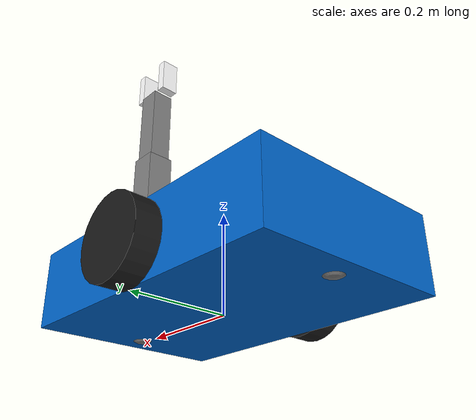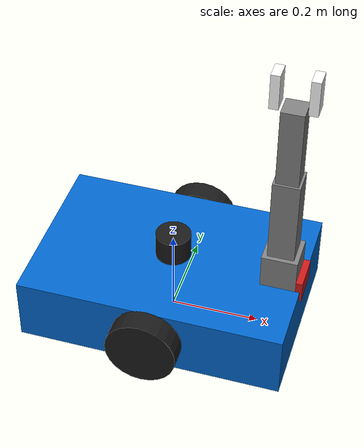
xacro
<?xml version="1.0"?>
<robot name="colour_sorting_robot" xmlns:xacro="http://www.ros.org/wiki/xacro">

  <!-- ===== PROPERTIES ===== -->
  <xacro:property name="base_length" value="0.6"/>
  <xacro:property name="base_width"  value="0.4"/>
  <xacro:property name="base_height" value="0.15"/>
  <xacro:property name="wheel_radius" value="0.08"/>
  <xacro:property name="wheel_width"  value="0.05"/>

  <!-- ===== MATERIALS ===== -->
  <material name="grey"> <color rgba="0.5 0.5 0.5 1"/></material>
  <material name="black"><color rgba="0.1 0.1 0.1 1"/></material>
  <material name="blue"> <color rgba="0.0 0.4 0.8 1"/></material>
  <material name="red">  <color rgba="0.8 0.1 0.1 1"/></material>
  <material name="white"><color rgba="1.0 1.0 1.0 1"/></material>

  <!-- ===== BASE FOOTPRINT ===== -->
  <link name="base_footprint"/>

  <joint name="base_footprint_joint" type="fixed">
    <parent link="base_footprint"/>
    <child  link="base_link"/>
    <origin xyz="0 0 ${wheel_radius}" rpy="0 0 0"/>
  </joint>

  <!-- ===== BASE LINK ===== -->
  <link name="base_link">
    <visual>
      <geometry><box size="${base_length} ${base_width} ${base_height}"/></geometry>
      <material name="blue"/>
    </visual>
    <collision>
      <geometry><box size="${base_length} ${base_width} ${base_height}"/></geometry>
    </collision>
    <inertial>
      <origin xyz="0 0 0" rpy="0 0 0"/>
      <mass value="15.0"/>
      <inertia ixx="0.4" ixy="0" ixz="0"
                         iyy="0.4" iyz="0"
                                   izz="0.4"/>
    </inertial>
  </link>

  <!-- ===== WHEEL MACRO ===== -->
  <xacro:macro name="wheel" params="name x y">
    <link name="${name}_wheel_link">
      <visual>
        <geometry><cylinder radius="${wheel_radius}" length="${wheel_width}"/></geometry>
        <material name="black"/>
      </visual>
      <collision>
        <geometry><cylinder radius="${wheel_radius}" length="${wheel_width}"/></geometry>
      </collision>
      <inertial>
        <origin xyz="0 0 0" rpy="0 0 0"/>
        <mass value="1.0"/>
        <inertia ixx="0.002" ixy="0" ixz="0"
                             iyy="0.002" iyz="0"
                                         izz="0.004"/>
      </inertial>
    </link>

    <joint name="${name}_wheel_joint" type="continuous">
      <parent link="base_link"/>
      <child  link="${name}_wheel_link"/>
      <origin xyz="${x} ${y} 0" rpy="-1.5707963 0 0"/>
      <axis xyz="0 0 1"/>
      <dynamics damping="0.1" friction="0.1"/>
    </joint>

    <gazebo reference="${name}_wheel_link">
      <mu1>10.0</mu1>
      <mu2>10.0</mu2>
      <kp>500000.0</kp>
      <kd>10.0</kd>
      <minDepth>0.001</minDepth>
      <maxVel>0.1</maxVel>
      <material>Gazebo/Black</material>
    </gazebo>
  </xacro:macro>

  <xacro:wheel name="left"  x="0.0" y=" 0.225"/>
  <xacro:wheel name="right" x="0.0" y="-0.225"/>

  <!-- ===== CASTER FRONT ===== -->
  <link name="caster_front_link">
    <visual>
      <geometry><sphere radius="0.04"/></geometry>
      <material name="grey"/>
    </visual>
    <collision>
      <geometry><sphere radius="0.04"/></geometry>
    </collision>
    <inertial>
      <mass value="0.5"/>
      <inertia ixx="0.001" ixy="0" ixz="0"
                           iyy="0.001" iyz="0"
                                       izz="0.001"/>
    </inertial>
  </link>
  <joint name="caster_front_joint" type="fixed">
    <parent link="base_link"/>
    <child  link="caster_front_link"/>
    <origin xyz=" 0.25 0.0 -0.04" rpy="0 0 0"/>
  </joint>
  <gazebo reference="caster_front_link">
    <mu1>0.0</mu1>
    <mu2>0.0</mu2>
  </gazebo>

  <!-- ===== CASTER REAR ===== -->
  <link name="caster_rear_link">
    <visual>
      <geometry><sphere radius="0.04"/></geometry>
      <material name="grey"/>
    </visual>
    <collision>
      <geometry><sphere radius="0.04"/></geometry>
    </collision>
    <inertial>
      <mass value="0.5"/>
      <inertia ixx="0.001" ixy="0" ixz="0"
                           iyy="0.001" iyz="0"
                                       izz="0.001"/>
    </inertial>
  </link>
  <joint name="caster_rear_joint" type="fixed">
    <parent link="base_link"/>
    <child  link="caster_rear_link"/>
    <origin xyz="-0.25 0.0 -0.04" rpy="0 0 0"/>
  </joint>
  <gazebo reference="caster_rear_link">
    <mu1>0.0</mu1>
    <mu2>0.0</mu2>
  </gazebo>

  <!-- ===== LIDAR ===== -->
  <link name="lidar_link">
    <visual>
      <geometry><cylinder radius="0.04" length="0.06"/></geometry>
      <material name="black"/>
    </visual>
    <collision>
      <geometry><cylinder radius="0.04" length="0.06"/></geometry>
    </collision>
    <inertial>
      <mass value="0.2"/>
      <inertia ixx="0.001" ixy="0" ixz="0"
                           iyy="0.001" iyz="0"
                                       izz="0.001"/>
    </inertial>
  </link>
  <joint name="lidar_joint" type="fixed">
    <parent link="base_link"/>
    <child  link="lidar_link"/>
    <origin xyz="0.0 0.0 ${base_height/2 + 0.03}" rpy="0 0 0"/>
  </joint>

  <!-- ===== CAMERA ===== -->
  <link name="camera_link">
    <visual>
      <geometry><box size="0.05 0.08 0.05"/></geometry>
      <material name="red"/>
    </visual>
    <collision>
      <geometry><box size="0.05 0.08 0.05"/></geometry>
    </collision>
    <inertial>
      <mass value="0.1"/>
      <inertia ixx="0.001" ixy="0" ixz="0"
                           iyy="0.001" iyz="0"
                                       izz="0.001"/>
    </inertial>
  </link>
  <joint name="camera_joint" type="fixed">
    <parent link="base_link"/>
    <child  link="camera_link"/>
    <origin xyz="${base_length/2 - 0.02} 0.0 ${base_height/2}" rpy="0 0 0"/>
  </joint>

  <link name="camera_optical_link"/>
  <joint name="camera_optical_joint" type="fixed">
    <parent link="camera_link"/>
    <child  link="camera_optical_link"/>
    <origin xyz="0 0 0" rpy="-1.5707 0 -1.5707"/>
  </joint>

  <!-- ===== ARM BASE ===== -->
  <link name="arm_base_link">
    <visual>
      <geometry><box size="0.08 0.08 0.08"/></geometry>
      <material name="grey"/>
    </visual>
    <collision>
      <geometry><box size="0.08 0.08 0.08"/></geometry>
    </collision>
    <inertial>
      <mass value="0.5"/>
      <inertia ixx="0.01" ixy="0" ixz="0"
                          iyy="0.01" iyz="0"
                                     izz="0.01"/>
    </inertial>
  </link>
  <joint name="arm_base_joint" type="fixed">
    <parent link="base_link"/>
    <child  link="arm_base_link"/>
    <origin xyz="${base_length/2 - 0.05} 0.0 ${base_height/2 + 0.04}" rpy="0 0 0"/>
  </joint>

  <!-- ===== ARM LINK 1 ===== -->
  <link name="arm_link1">
    <visual>
      <geometry><box size="0.06 0.06 0.20"/></geometry>
      <material name="grey"/>
    </visual>
    <collision>
      <geometry><box size="0.06 0.06 0.20"/></geometry>
    </collision>
    <inertial>
      <mass value="0.4"/>
      <inertia ixx="0.01" ixy="0" ixz="0"
                          iyy="0.01" iyz="0"
                                     izz="0.01"/>
    </inertial>
  </link>
  <joint name="arm_joint1" type="revolute">
    <parent link="arm_base_link"/>
    <child  link="arm_link1"/>
    <origin xyz="0 0 0.14" rpy="0 0 0"/>
    <axis xyz="0 1 0"/>
    <limit lower="-1.57" upper="1.57" effort="10" velocity="1.0"/>
    <dynamics damping="0.5"/>
  </joint>

  <!-- ===== ARM LINK 2 ===== -->
  <link name="arm_link2">
    <visual>
      <geometry><box size="0.05 0.05 0.18"/></geometry>
      <material name="grey"/>
    </visual>
    <collision>
      <geometry><box size="0.05 0.05 0.18"/></geometry>
    </collision>
    <inertial>
      <mass value="0.3"/>
      <inertia ixx="0.01" ixy="0" ixz="0"
                          iyy="0.01" iyz="0"
                                     izz="0.01"/>
    </inertial>
  </link>
  <joint name="arm_joint2" type="revolute">
    <parent link="arm_link1"/>
    <child  link="arm_link2"/>
    <origin xyz="0 0 0.19" rpy="0 0 0"/>
    <axis xyz="0 1 0"/>
    <limit lower="-1.57" upper="1.57" effort="10" velocity="1.0"/>
    <dynamics damping="0.5"/>
  </joint>

  <!-- ===== GRIPPER LEFT ===== -->
  <link name="gripper_left">
    <visual>
      <geometry><box size="0.02 0.04 0.08"/></geometry>
      <material name="white"/>
    </visual>
    <collision>
      <geometry><box size="0.02 0.04 0.08"/></geometry>
    </collision>
    <inertial>
      <mass value="0.1"/>
      <inertia ixx="0.001" ixy="0" ixz="0"
                           iyy="0.001" iyz="0"
                                       izz="0.001"/>
    </inertial>
  </link>
  <joint name="gripper_left_joint" type="prismatic">
    <parent link="arm_link2"/>
    <child  link="gripper_left"/>
    <origin xyz="0.04 0.0 0.13" rpy="0 0 0"/>
    <axis xyz="0 1 0"/>
    <limit lower="0.0" upper="0.06" effort="5" velocity="0.5"/>
  </joint>

  <!-- ===== GRIPPER RIGHT ===== -->
  <link name="gripper_right">
    <visual>
      <geometry><box size="0.02 0.04 0.08"/></geometry>
      <material name="white"/>
    </visual>
    <collision>
      <geometry><box size="0.02 0.04 0.08"/></geometry>
    </collision>
    <inertial>
      <mass value="0.1"/>
      <inertia ixx="0.001" ixy="0" ixz="0"
                           iyy="0.001" iyz="0"
                                       izz="0.001"/>
    </inertial>
  </link>
  <joint name="gripper_right_joint" type="prismatic">
    <parent link="arm_link2"/>
    <child  link="gripper_right"/>
    <origin xyz="-0.04 0.0 0.13" rpy="0 0 0"/>
    <axis xyz="0 1 0"/>
    <limit lower="-0.06" upper="0.0" effort="5" velocity="0.5"/>
  </joint>

  <!--         GAZEBO PLUGINS                           -->

  <!-- Differential Drive Plugin -->
  <gazebo>
    <plugin name="diff_drive" filename="libgazebo_ros_diff_drive.so">
      <updateRate>50</updateRate>
      <leftJoint>left_wheel_joint</leftJoint>
      <rightJoint>right_wheel_joint</rightJoint>
      <wheelSeparation>0.45</wheelSeparation>
      <wheelDiameter>0.16</wheelDiameter>
      <wheelAcceleration>1.0</wheelAcceleration>
      <wheelTorque>20</wheelTorque>
      <commandTopic>cmd_vel</commandTopic>
      <odometryTopic>odom</odometryTopic>
      <odometryFrame>odom</odometryFrame>
      <robotBaseFrame>base_footprint</robotBaseFrame>
      <publishOdomTF>true</publishOdomTF>
      <publishWheelTF>false</publishWheelTF>
      <publishTf>true</publishTf>
      <publishWheelJointState>true</publishWheelJointState>
      <legacyMode>false</legacyMode>
      <rosDebugLevel>na</rosDebugLevel>
    </plugin>
  </gazebo>

  <!-- LiDAR Plugin -->
  <gazebo reference="lidar_link">
    <sensor type="ray" name="lidar_sensor">
      <pose>0 0 0 0 0 0</pose>
      <visualize>true</visualize>
      <update_rate>10</update_rate>
      <ray>
        <scan>
          <horizontal>
            <samples>360</samples>
            <resolution>1</resolution>
            <min_angle>-3.14159</min_angle>
            <max_angle> 3.14159</max_angle>
          </horizontal>
        </scan>
        <range>
          <min>0.15</min>
          <max>10.0</max>
          <resolution>0.01</resolution>
        </range>
      </ray>
      <plugin name="lidar_plugin" filename="libgazebo_ros_laser.so">
        <topicName>/scan</topicName>
        <frameName>lidar_link</frameName>
      </plugin>
    </sensor>
  </gazebo>

  <!-- RGB Camera Plugin -->
  <gazebo reference="camera_link">
    <sensor type="camera" name="rgb_camera">
      <update_rate>30</update_rate>
      <camera name="rgb_camera">
        <horizontal_fov>1.3962634</horizontal_fov>
        <image>
          <width>640</width>
          <height>480</height>
          <format>R8G8B8</format>
        </image>
        <clip><near>0.02</near><far>300</far></clip>
      </camera>
      <plugin name="camera_plugin" filename="libgazebo_ros_camera.so">
        <alwaysOn>true</alwaysOn>
        <updateRate>30</updateRate>
        <cameraName>rgb_camera</cameraName>
        <imageTopicName>/camera/image_raw</imageTopicName>
        <cameraInfoTopicName>/camera/camera_info</cameraInfoTopicName>
        <frameName>camera_optical_link</frameName>
      </plugin>
    </sensor>
  </gazebo>

  <gazebo reference="base_link">
    <material>Gazebo/Blue</material>
  </gazebo>

</robot>
